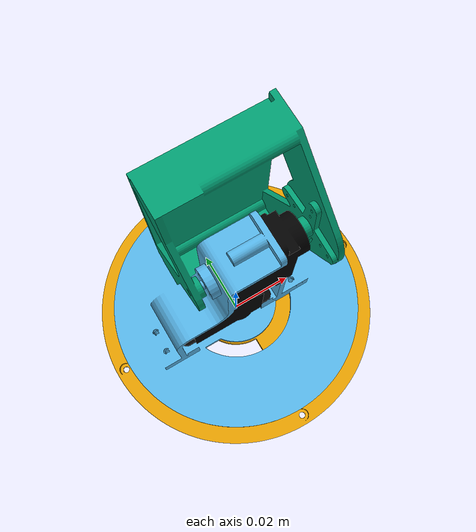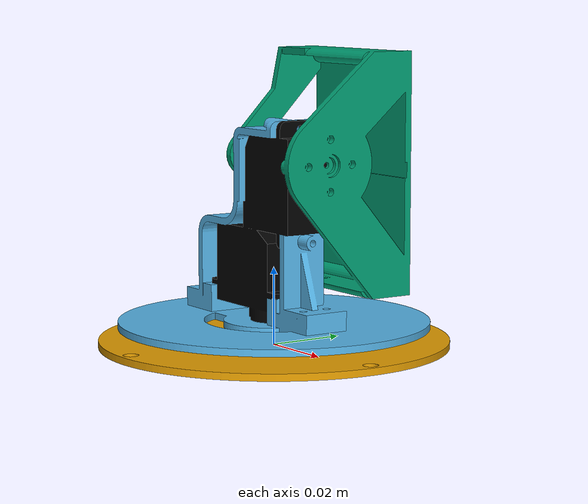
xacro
<robot xmlns:sensor="http://playerstage.sourceforge.net/gazebo/xmlschema/#sensor"
       xmlns:controller="http://playerstage.sourceforge.net/gazebo/xmlschema/#controller"
       xmlns:interface="http://playerstage.sourceforge.net/gazebo/xmlschema/#interface"
       xmlns:xacro="http://ros.org/wiki/xacro"
	   name="pan_tilt_adapter"
	>

		 <link name="pantilt_base_link">
			<visual>
				<geometry>
			  		<mesh filename="package://h4r_pantilt_adapter/meshes/v1_combined/base.dae"  />
				</geometry>
			</visual>

			<collision name="pantilt_foot_link_collision">
				<geometry>
					<mesh filename="package://h4r_pantilt_adapter/meshes/v1_combined/base.dae"  />
				</geometry>
			</collision>

			<inertial>
				<mass value="0.010" />
				<inertia ixx="3.8"
						 iyy="3.8"
						 izz="7.6"
				         iyz="0.0"
				         ixy="0.0"
				         ixz="0.0" />
			</inertial>
		</link>

	<joint name="pantilt_pan_joint" type="revolute">
      <axis xyz="0 0 1"/>
      <limit lower="0" upper="1" effort="9" velocity="1" />
      <origin xyz="0 0 0.0027" rpy="0 0 0" />
      <parent link="pantilt_base_link"/>
      <child link="pantilt_center_link"/>
    </joint>

		<link name="pantilt_center_link">
			<visual>
				<geometry>
			  		<mesh filename="package://h4r_pantilt_adapter/meshes/v1_combined/center.dae"  />
				</geometry>
			</visual>

			<collision name="pantilt_center_link_collision">
				<geometry>
					<mesh filename="package://h4r_pantilt_adapter/meshes/v1_combined/center.dae"  />
				</geometry>
			</collision>

			<inertial>
				<mass value="0.025" />
				<inertia ixx="9.325"
						 iyy="11.911"
						 izz="7.028"
				         iyz="0.0"
				         ixy="0.0"
				         ixz="1.025" />
			</inertial>
		</link>

	<joint name="pantilt_tilt_joint" type="revolute">
      <axis xyz="1 0 0"/>
      <limit lower="0" upper="1" effort="9" velocity="1" />
      <origin xyz="0.0223 0 0.0455" rpy="0 0 0" />
      <parent link="pantilt_center_link"/>
      <child link="pantilt_top_link"/>
    </joint>

		<link name="pantilt_top_link">

			<visual>
				<geometry>
			  		<mesh filename="package://h4r_pantilt_adapter/meshes/v1_combined/multicamera_mount.dae"  />
				</geometry>
			</visual>

			<collision name="pantilt_top_link_collision">
				<geometry>
					<mesh filename="package://h4r_pantilt_adapter/meshes/v1_combined/multicamera_mount.dae"  />
				</geometry>
			</collision>

			<inertial>
				<mass value="0.010" />
				<inertia ixx="4.481"
						 iyy="2.930"
						 izz="5.819"
				         iyz="-0.083"
				         ixy="0.049"
				         ixz="0.317" />
			</inertial>
		</link>

</robot>
